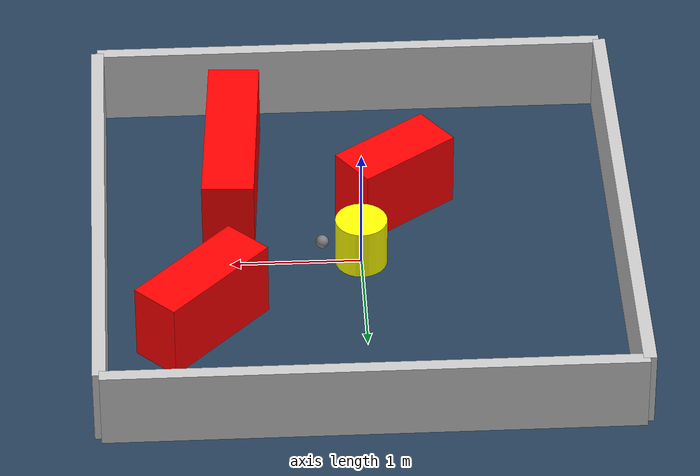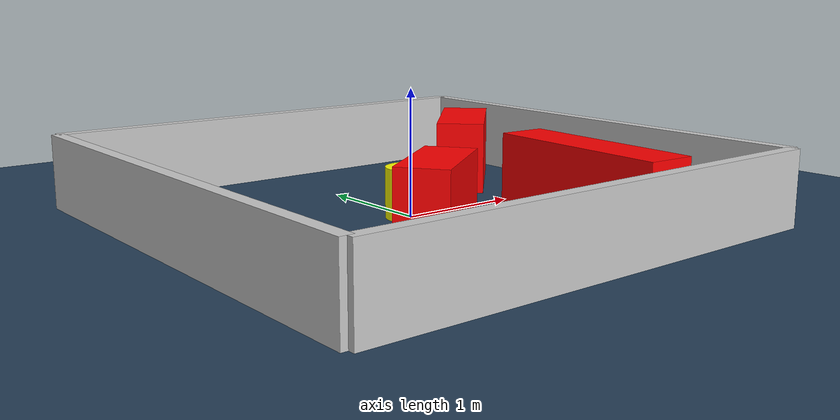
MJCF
<?xml version="1.0" ?>
<mujoco model="generated_environment">
  <option timestep="0.01" integrator="RK4" cone="elliptic"/>
  <default>
    <geom density="1"/>
  </default>
  <asset>
    <texture builtin="gradient" height="3072" rgb1="0.3 0.5 0.7" rgb2="0 0 0" type="skybox" width="512"/>
    <texture builtin="checker" height="300" mark="edge" markrgb="0.8 0.8 0.8" name="groundplane" rgb1="0.2 0.3 0.4" rgb2="0.1 0.2 0.3" type="2d" width="300"/>
    <material name="groundplane" reflectance="0.2" texrepeat="5 5" texture="groundplane" texuniform="true"/>
    <material name="robot" rgba="0.0 1.0 0.0 1"/>
  </asset>
  <worldbody>
    <light dir="0 0 -1" directional="true" pos="0 0 1.5"/>
    <geom condim="4" friction="1.0 0.005 0.001" material="groundplane" name="floor" size="0 0 0.05" type="plane"/>
    <body name="walls">
      <geom name="wall_1" condim="4" pos="-2.0 0.0 0.3" rgba="0.800000011920929 0.800000011920929 0.800000011920929 1.0" size="0.05 2.0 0.3" type="box"/>
      <geom name="wall_2" condim="4" pos="2.0 0.0 0.3" rgba="0.800000011920929 0.800000011920929 0.800000011920929 1.0" size="0.05 2.0 0.3" type="box"/>
      <geom name="wall_3" condim="4" pos="0.0 -2.0 0.3" rgba="0.800000011920929 0.800000011920929 0.800000011920929 1.0" size="2.0 0.05 0.3" type="box"/>
      <geom name="wall_4" condim="4" pos="0.0 2.0 0.3" rgba="0.800000011920929 0.800000011920929 0.800000011920929 1.0" size="2.0 0.05 0.3" type="box"/>
    </body>
    <body name="robot">
      <joint name="joint_x" type="slide" pos="0 0 0" axis="1 0 0"/>
      <joint name="joint_y" type="slide" pos="0 0 0" axis="0 1 0"/>
      <geom name="robot" type="sphere" pos="0.3 0.0 0.2" size="0.05" mass="5." friction="1.0 0.005 0.0001" condim="4" rgba="0.5 0.5 0.5 1.0"/>
      <site name="sensor_ball"/>
    </body>
    <body name="obstacle_movable_1">
      <geom name="obstacle_movable_1" condim="4" pos="0.0 0.0 0.2" euler="0 0 0.0" friction="1.0 0.005 0.001" rgba="1.0 1.0 0.0 1.0" size="0.2 0.2 0.0" type="cylinder" mass="0.1"/>
      <joint type="free"/>
    </body>
    <body name="obstacle_2_static">
      <geom name="obstacle_2_static" condim="4" pos="0.9682608599965603 -0.952403469294287 0.3" euler="0 0 86.6900130239722" friction="1.0 0.005 0.001" rgba="1 0 0 1" size="0.7794063726934757 0.2 0.3" type="box"/>
    </body>
    <body name="obstacle_3_static">
      <geom name="obstacle_3_static" condim="4" pos="1.231716751081903 0.7923923171057143 0.3" euler="0 0 225.9631390102334" friction="1.0 0.005 0.001" rgba="1 0 0 1" size="0.5158293111534396 0.2 0.3" type="box"/>
    </body>
    <body name="obstacle_4_static">
      <geom name="obstacle_4_static" condim="4" pos="-0.29036148091276326 -0.6535309411804728 0.3" euler="0 0 35.90524812064124" friction="1.0 0.005 0.001" rgba="1 0 0 1" size="0.4281718827869029 0.2 0.3" type="box"/>
    </body>
  </worldbody>
  <actuator>
    <motor name="actuator_x" joint="joint_x" gear="1" ctrlrange="-1 1"/>
    <motor name="actuator_y" joint="joint_y" gear="1" ctrlrange="-1 1"/>
  </actuator>
</mujoco>
